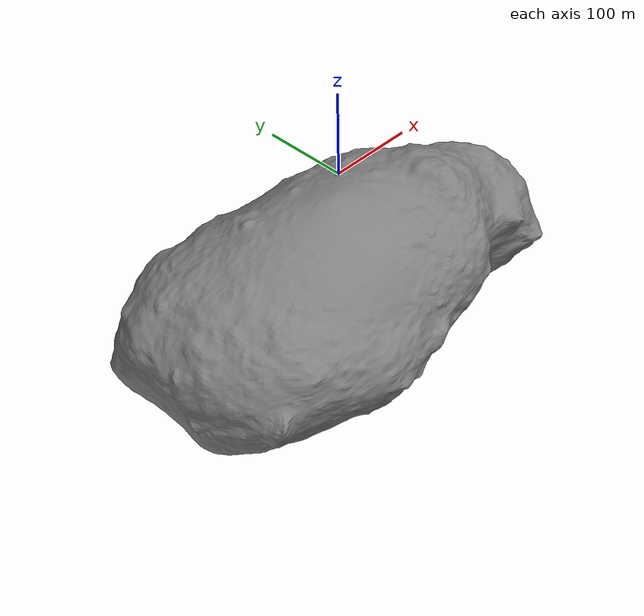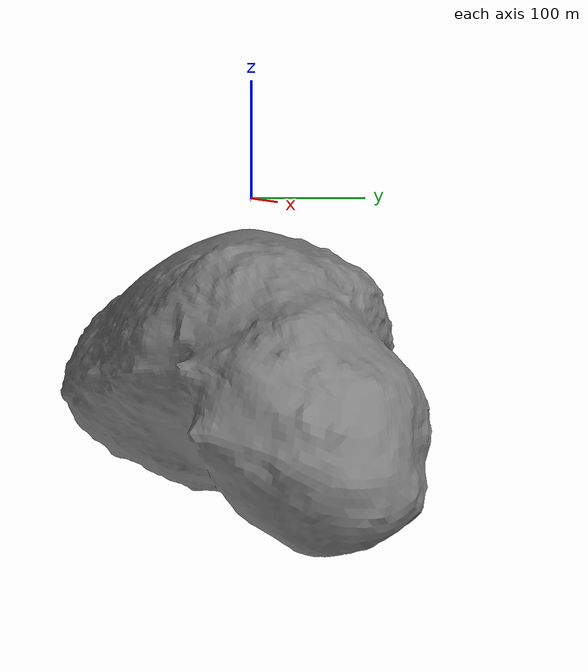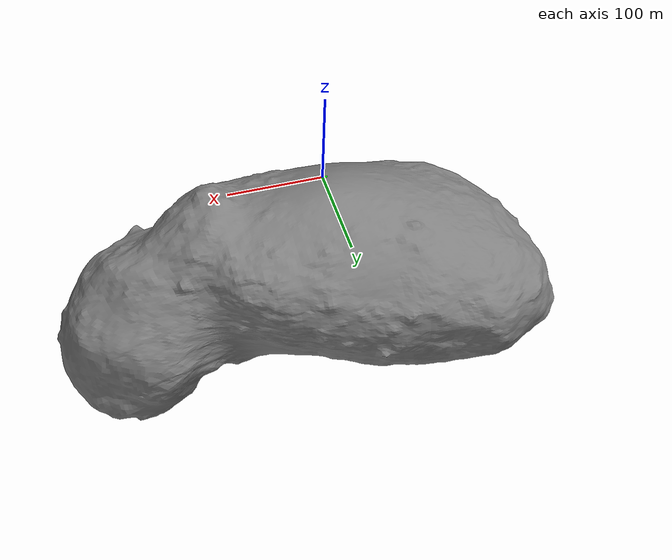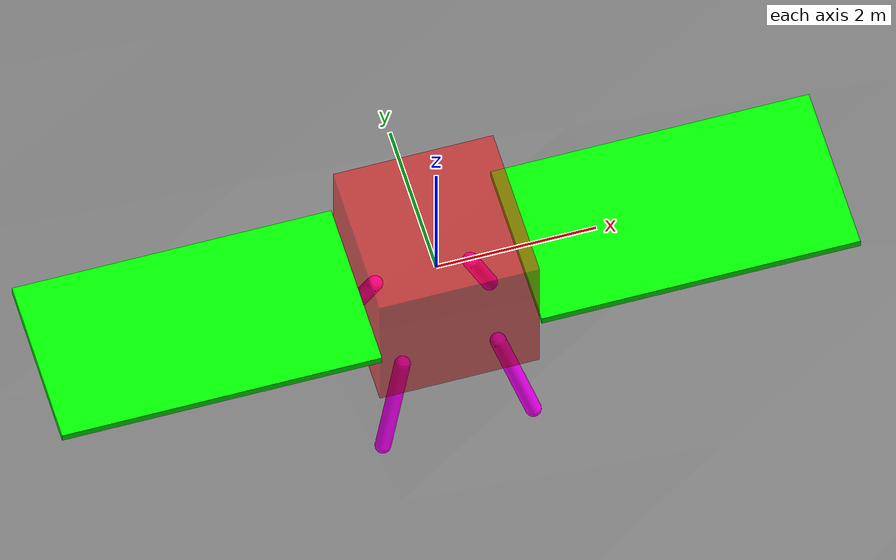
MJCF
<mujoco>
	<option gravity="0 0 0"/>

	<default class="main">
		<default class="panel">
			<geom type="box" pos="0 0 2" size="1.1 0.05 2" rgba="0 1 0 1"/>
		</default>
		<default class="leg">
			<geom type="capsule" size="0.1" fromto="0 0 0 0 0 1.25" rgba="1 0 1 1"/>
		</default>
    </default>

	<asset>
	  <mesh name="asteroid" file="ItokawaHayabusa.obj" scale="1000 1000 1000"/>
	</asset>

	<worldbody>
		<body name="hub">
			<freejoint/>
			<site name="hub_origin"/>

			<geom name="hub_box" type="box" size="1 1 1" rgba="1 0 0 0.5" density="200"/>

			<body name="panel_1" childclass="panel" pos="1 0 0" xyaxes="0 1 0 0 1 1">
				<geom name="panel_1_box"/>
			</body>
			<body name="panel_2" childclass="panel" pos="-1 0 0" xyaxes="0 -1 0 0 1 1">
				<geom name="panel_2_box"/>
			</body>

			<body name="leg_1" pos="0.6 0.6 -1" zaxis="0.6 0.6 -2">
				<geom name="leg_1" class="leg"/>
			</body>

			<body name="leg_2" pos="-0.6 0.6 -1" zaxis="-0.6 0.6 -2">
				<geom name="leg_2" class="leg"/>
			</body>

			<body name="leg_3" pos="-0.6 -0.6 -1" zaxis="-0.6 -0.6 -2">
				<geom name="leg_3" class="leg"/>
			</body>

			<body name="leg_4" pos="0.6 -0.6 -1" zaxis="0.6 -0.6 -2">
				<geom name="leg_4" class="leg"/>
			</body>
		</body>

		<body name="asteroid" pos="0 0 -150">
			<geom name="asteroid" type="mesh" mesh="asteroid"/>
		</body>

	</worldbody>

	<actuator>
		<motor name="thrust" site="hub_origin" gear="0 0 1 0 0 0"/>
	</actuator>
</mujoco>
